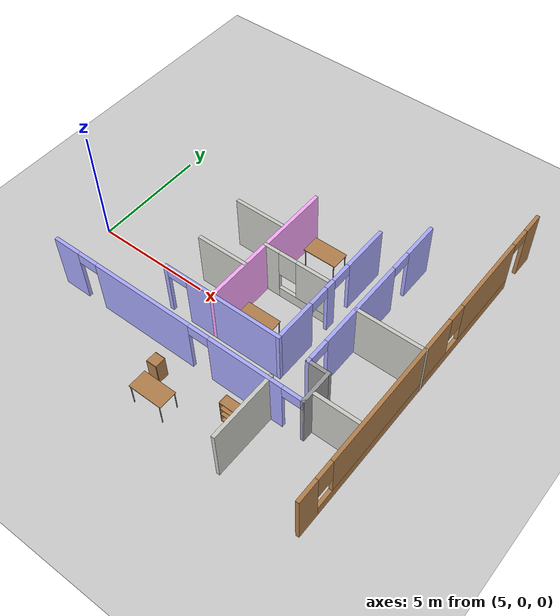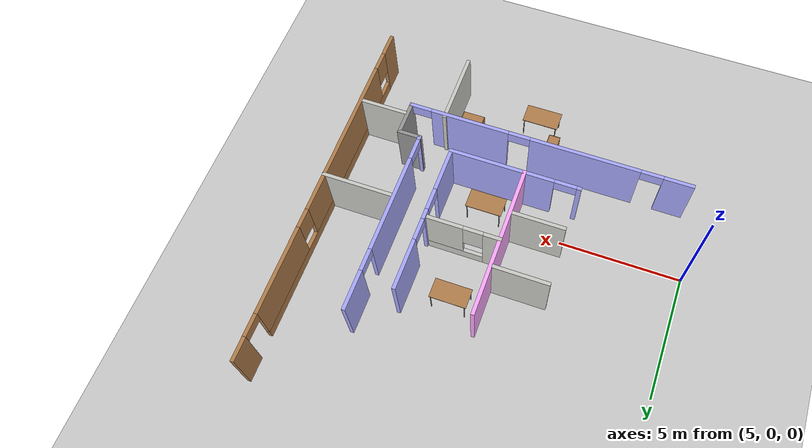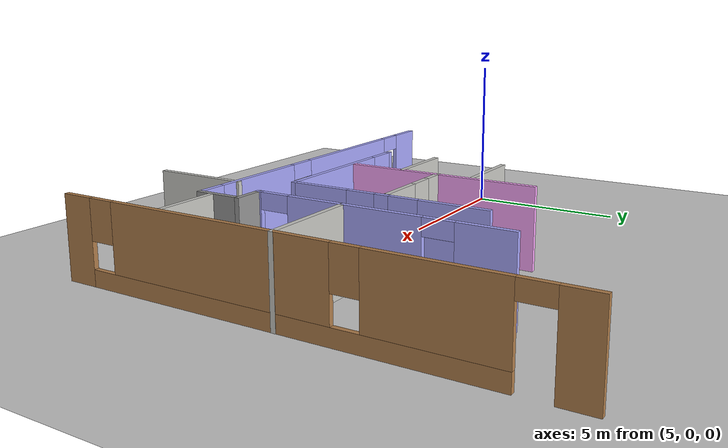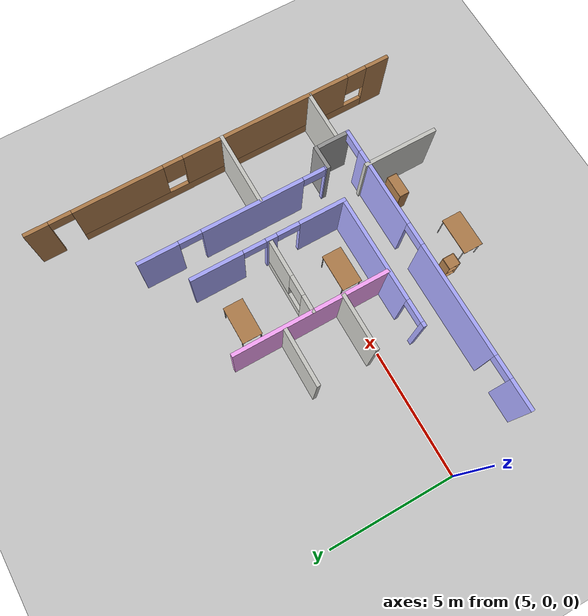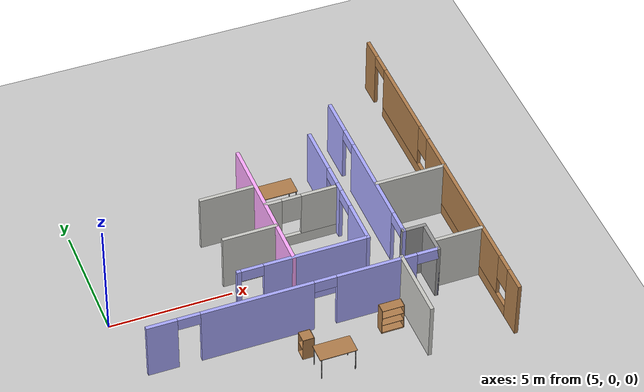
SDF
<sdf version="1.6">
 <world name="default">
  <model name="ground_plane">
   <static>1</static>
   <link name="link">
    <collision name="collision">
     <geometry><plane><normal>0 0 1</normal><size>100 100</size></plane></geometry>
     <surface>
      <contact><collide_bitmask>65535</collide_bitmask></contact>
      <friction><ode><mu>100</mu><mu2>50</mu2></ode></friction>
     </surface>
    </collision>
    <visual name="visual">
     <cast_shadows>0</cast_shadows>
     <geometry><plane><normal>0 0 1</normal><size>100 100</size></plane></geometry>
     <material>
      <script><uri>file://media/materials/scripts/gazebo.material</uri><name>Gazebo/Grey</name></script>
     </material>
    </visual>
   </link>
  </model>
  <model name="newOffice">
   <pose>10.3935 1.72643 0 0 -0 0</pose>
   <link name="Wall_2">
    <pose>8.92902 -0.018654 0 0 -0 1.5708</pose>
    <visual name="Wall_2_Visual_0">
     <pose>-7.00867 0 1.25 0 -0 0</pose>
     <geometry><box><size>0.982667 0.15 2.5</size></box></geometry>
     <material>
      <script><uri>file://media/materials/scripts/gazebo.material</uri><name>Gazebo/Wood</name></script>
      <ambient>1 0.666667 1 1</ambient>
     </material>
     <meta><layer>0</layer></meta>
    </visual>
    <collision name="Wall_2_Collision_0">
     <geometry><box><size>0.982667 0.15 2.5</size></box></geometry>
     <pose>-7.00867 0 1.25 0 -0 0</pose>
    </collision>
    <visual name="Wall_2_Visual_1">
     <pose>7.01908 0 1.25 0 -0 0</pose>
     <geometry><box><size>0.961832 0.15 2.5</size></box></geometry>
     <material>
      <script><uri>file://media/materials/scripts/gazebo.material</uri><name>Gazebo/Wood</name></script>
      <ambient>1 0.666667 1 1</ambient>
     </material>
     <meta><layer>0</layer></meta>
    </visual>
    <collision name="Wall_2_Collision_1">
     <geometry><box><size>0.961832 0.15 2.5</size></box></geometry>
     <pose>7.01908 0 1.25 0 -0 0</pose>
    </collision>
    <visual name="Wall_2_Visual_2">
     <pose>-0.439582 0 0.25 0 -0 0</pose>
     <geometry><box><size>12.1555 0.15 0.5</size></box></geometry>
     <material>
      <script><uri>file://media/materials/scripts/gazebo.material</uri><name>Gazebo/Wood</name></script>
      <ambient>1 0.666667 1 1</ambient>
     </material>
     <meta><layer>0</layer></meta>
    </visual>
    <collision name="Wall_2_Collision_2">
     <geometry><box><size>12.1555 0.15 0.5</size></box></geometry>
     <pose>-0.439582 0 0.25 0 -0 0</pose>
    </collision>
    <visual name="Wall_2_Visual_3">
     <pose>-2.24767 0 1.5 0 -0 0</pose>
     <geometry><box><size>6.93933 0.15 2</size></box></geometry>
     <material>
      <script><uri>file://media/materials/scripts/gazebo.material</uri><name>Gazebo/Wood</name></script>
      <ambient>1 0.666667 1 1</ambient>
     </material>
     <meta><layer>0</layer></meta>
    </visual>
    <collision name="Wall_2_Collision_3">
     <geometry><box><size>6.93933 0.15 2</size></box></geometry>
     <pose>-2.24767 0 1.5 0 -0 0</pose>
    </collision>
    <visual name="Wall_2_Visual_4">
     <pose>3.83008 0 1.5 0 -0 0</pose>
     <geometry><box><size>3.61617 0.15 2</size></box></geometry>
     <material>
      <script><uri>file://media/materials/scripts/gazebo.material</uri><name>Gazebo/Wood</name></script>
      <ambient>1 0.666667 1 1</ambient>
     </material>
     <meta><layer>0</layer></meta>
    </visual>
    <collision name="Wall_2_Collision_4">
     <geometry><box><size>3.61617 0.15 2</size></box></geometry>
     <pose>3.83008 0 1.5 0 -0 0</pose>
    </collision>
    <visual name="Wall_2_Visual_5">
     <pose>-6.11733 0 1.9 0 -0 0</pose>
     <geometry><box><size>0.8 0.15 1.2</size></box></geometry>
     <material>
      <script><uri>file://media/materials/scripts/gazebo.material</uri><name>Gazebo/Wood</name></script>
      <ambient>1 0.666667 1 1</ambient>
     </material>
     <meta><layer>0</layer></meta>
    </visual>
    <collision name="Wall_2_Collision_5">
     <geometry><box><size>0.8 0.15 1.2</size></box></geometry>
     <pose>-6.11733 0 1.9 0 -0 0</pose>
    </collision>
    <visual name="Wall_2_Visual_6">
     <pose>1.622 0 1.9 0 -0 0</pose>
     <geometry><box><size>0.8 0.15 1.2</size></box></geometry>
     <material>
      <script><uri>file://media/materials/scripts/gazebo.material</uri><name>Gazebo/Wood</name></script>
      <ambient>1 0.666667 1 1</ambient>
     </material>
     <meta><layer>0</layer></meta>
    </visual>
    <collision name="Wall_2_Collision_6">
     <geometry><box><size>0.8 0.15 1.2</size></box></geometry>
     <pose>1.622 0 1.9 0 -0 0</pose>
    </collision>
    <visual name="Wall_2_Visual_7">
     <pose>6.08817 0 2.25 0 -0 0</pose>
     <geometry><box><size>0.9 0.15 0.5</size></box></geometry>
     <material>
      <script><uri>file://media/materials/scripts/gazebo.material</uri><name>Gazebo/Wood</name></script>
      <ambient>1 0.666667 1 1</ambient>
     </material>
     <meta><layer>0</layer></meta>
    </visual>
    <collision name="Wall_2_Collision_7">
     <geometry><box><size>0.9 0.15 0.5</size></box></geometry>
     <pose>6.08817 0 2.25 0 -0 0</pose>
    </collision>
   </link>
   <link name="Wall_33">
    <pose>4.64199 0.020406 0 0 0 -1.5708</pose>
    <visual name="Wall_33_Visual_0">
     <pose>-2.07423 0 1.25 0 -0 0</pose>
     <geometry><box><size>2.10154 0.15 2.5</size></box></geometry>
     <material>
      <script><uri>file://media/materials/scripts/gazebo.material</uri><name>Gazebo/Grey</name></script>
      <ambient>0.666667 0.666667 1 1</ambient>
     </material>
     <meta><layer>0</layer></meta>
    </visual>
    <collision name="Wall_33_Collision_0">
     <geometry><box><size>2.10154 0.15 2.5</size></box></geometry>
     <pose>-2.07423 0 1.25 0 -0 0</pose>
    </collision>
    <visual name="Wall_33_Visual_1">
     <pose>0.099527 0 1.25 0 -0 0</pose>
     <geometry><box><size>0.44597 0.15 2.5</size></box></geometry>
     <material>
      <script><uri>file://media/materials/scripts/gazebo.material</uri><name>Gazebo/Grey</name></script>
      <ambient>0.666667 0.666667 1 1</ambient>
     </material>
     <meta><layer>0</layer></meta>
    </visual>
    <collision name="Wall_33_Collision_1">
     <geometry><box><size>0.44597 0.15 2.5</size></box></geometry>
     <pose>0.099527 0 1.25 0 -0 0</pose>
    </collision>
    <visual name="Wall_33_Visual_2">
     <pose>2.17376 0 1.25 0 -0 0</pose>
     <geometry><box><size>1.90249 0.15 2.5</size></box></geometry>
     <material>
      <script><uri>file://media/materials/scripts/gazebo.material</uri><name>Gazebo/Grey</name></script>
      <ambient>0.666667 0.666667 1 1</ambient>
     </material>
     <meta><layer>0</layer></meta>
    </visual>
    <collision name="Wall_33_Collision_2">
     <geometry><box><size>1.90249 0.15 2.5</size></box></geometry>
     <pose>2.17376 0 1.25 0 -0 0</pose>
    </collision>
    <visual name="Wall_33_Visual_3">
     <pose>-0.573458 0 2.25 0 -0 0</pose>
     <geometry><box><size>0.9 0.15 0.5</size></box></geometry>
     <material>
      <script><uri>file://media/materials/scripts/gazebo.material</uri><name>Gazebo/Grey</name></script>
      <ambient>0.666667 0.666667 1 1</ambient>
     </material>
     <meta><layer>0</layer></meta>
    </visual>
    <collision name="Wall_33_Collision_3">
     <geometry><box><size>0.9 0.15 0.5</size></box></geometry>
     <pose>-0.573458 0 2.25 0 -0 0</pose>
    </collision>
    <visual name="Wall_33_Visual_4">
     <pose>0.772512 0 2.25 0 -0 0</pose>
     <geometry><box><size>0.9 0.15 0.5</size></box></geometry>
     <material>
      <script><uri>file://media/materials/scripts/gazebo.material</uri><name>Gazebo/Grey</name></script>
      <ambient>0.666667 0.666667 1 1</ambient>
     </material>
     <meta><layer>0</layer></meta>
    </visual>
    <collision name="Wall_33_Collision_4">
     <geometry><box><size>0.9 0.15 0.5</size></box></geometry>
     <pose>0.772512 0 2.25 0 -0 0</pose>
    </collision>
   </link>
   <link name="Wall_35">
    <pose>2.01699 -3.02959 0 0 -0 3.14159</pose>
    <visual name="Wall_35_Visual_0">
     <pose>-0.543959 0 1.25 0 -0 0</pose>
     <geometry><box><size>4.31208 0.15 2.5</size></box></geometry>
     <material>
      <script><uri>file://media/materials/scripts/gazebo.material</uri><name>Gazebo/Grey</name></script>
      <ambient>0.666667 0.666667 1 1</ambient>
     </material>
     <meta><layer>0</layer></meta>
    </visual>
    <collision name="Wall_35_Collision_0">
     <geometry><box><size>4.31208 0.15 2.5</size></box></geometry>
     <pose>-0.543959 0 1.25 0 -0 0</pose>
    </collision>
    <visual name="Wall_35_Visual_1">
     <pose>2.60604 0 1.25 0 -0 0</pose>
     <geometry><box><size>0.187919 0.15 2.5</size></box></geometry>
     <material>
      <script><uri>file://media/materials/scripts/gazebo.material</uri><name>Gazebo/Grey</name></script>
      <ambient>0.666667 0.666667 1 1</ambient>
     </material>
     <meta><layer>0</layer></meta>
    </visual>
    <collision name="Wall_35_Collision_1">
     <geometry><box><size>0.187919 0.15 2.5</size></box></geometry>
     <pose>2.60604 0 1.25 0 -0 0</pose>
    </collision>
    <visual name="Wall_35_Visual_2">
     <pose>2.06208 0 2.25 0 -0 0</pose>
     <geometry><box><size>0.9 0.15 0.5</size></box></geometry>
     <material>
      <script><uri>file://media/materials/scripts/gazebo.material</uri><name>Gazebo/Grey</name></script>
      <ambient>0.666667 0.666667 1 1</ambient>
     </material>
     <meta><layer>0</layer></meta>
    </visual>
    <collision name="Wall_35_Collision_2">
     <geometry><box><size>0.9 0.15 0.5</size></box></geometry>
     <pose>2.06208 0 2.25 0 -0 0</pose>
    </collision>
   </link>
   <link name="Wall_37">
    <collision name="Wall_37_Collision">
     <geometry><box><size>6.25 0.15 2.5</size></box></geometry>
     <pose>0 0 1.25 0 -0 0</pose>
    </collision>
    <visual name="Wall_37_Visual">
     <pose>0 0 1.25 0 -0 0</pose>
     <geometry><box><size>6.25 0.15 2.5</size></box></geometry>
     <material>
      <script><uri>file://media/materials/scripts/gazebo.material</uri><name>Gazebo/Grey</name></script>
      <ambient>1 0.666667 1 1</ambient>
     </material>
     <meta><layer>0</layer></meta>
    </visual>
    <pose>1.61924 0.020406 0 0 0 -1.5708</pose>
   </link>
   <link name="Wall_39">
    <collision name="Wall_39_Collision">
     <geometry><box><size>2.25 0.15 2.5</size></box></geometry>
     <pose>0 0 1.25 0 -0 0</pose>
    </collision>
    <visual name="Wall_39_Visual">
     <pose>0 0 1.25 0 -0 0</pose>
     <geometry><box><size>2.25 0.15 2.5</size></box></geometry>
     <material>
      <script><uri>file://media/materials/scripts/gazebo.material</uri><name>Gazebo/CeilingTiled</name></script>
      <ambient>1 0.666667 1 1</ambient>
     </material>
     <meta><layer>0</layer></meta>
    </visual>
    <pose>0.436095 1.1164 0 0 -0 0</pose>
   </link>
   <link name="Wall_41">
    <collision name="Wall_41_Collision">
     <geometry><box><size>2.25 0.15 2.5</size></box></geometry>
     <pose>0 0 1.25 0 -0 0</pose>
    </collision>
    <visual name="Wall_41_Visual">
     <pose>0 0 1.25 0 -0 0</pose>
     <geometry><box><size>2.25 0.15 2.5</size></box></geometry>
     <material>
      <script><uri>file://media/materials/scripts/gazebo.material</uri><name>Gazebo/CeilingTiled</name></script>
      <ambient>1 0.666667 1 1</ambient>
     </material>
     <meta><layer>0</layer></meta>
    </visual>
    <pose>0.529143 -1.20979 0 0 -0 0</pose>
   </link>
   <link name="Wall_43">
    <pose>3.04424 -0.000172 0 0 -0 0</pose>
    <visual name="Wall_43_Visual_0">
     <pose>-1.1334 0 1.25 0 -0 0</pose>
     <geometry><box><size>0.733196 0.15 2.5</size></box></geometry>
     <material>
      <script><uri>file://media/materials/scripts/gazebo.material</uri><name>Gazebo/CeilingTiled</name></script>
      <ambient>1 1 1 1</ambient>
     </material>
     <meta><layer>0</layer></meta>
    </visual>
    <collision name="Wall_43_Collision_0">
     <geometry><box><size>0.733196 0.15 2.5</size></box></geometry>
     <pose>-1.1334 0 1.25 0 -0 0</pose>
    </collision>
    <visual name="Wall_43_Visual_1">
     <pose>0.366598 0 0.25 0 -0 0</pose>
     <geometry><box><size>2.2668 0.15 0.5</size></box></geometry>
     <material>
      <script><uri>file://media/materials/scripts/gazebo.material</uri><name>Gazebo/CeilingTiled</name></script>
      <ambient>1 1 1 1</ambient>
     </material>
     <meta><layer>0</layer></meta>
    </visual>
    <collision name="Wall_43_Collision_1">
     <geometry><box><size>2.2668 0.15 0.5</size></box></geometry>
     <pose>0.366598 0 0.25 0 -0 0</pose>
    </collision>
    <visual name="Wall_43_Visual_2">
     <pose>0.766598 0 1.5 0 -0 0</pose>
     <geometry><box><size>1.4668 0.15 2</size></box></geometry>
     <material>
      <script><uri>file://media/materials/scripts/gazebo.material</uri><name>Gazebo/CeilingTiled</name></script>
      <ambient>1 1 1 1</ambient>
     </material>
     <meta><layer>0</layer></meta>
    </visual>
    <collision name="Wall_43_Collision_2">
     <geometry><box><size>1.4668 0.15 2</size></box></geometry>
     <pose>0.766598 0 1.5 0 -0 0</pose>
    </collision>
    <visual name="Wall_43_Visual_3">
     <pose>-0.366804 0 1.9 0 -0 0</pose>
     <geometry><box><size>0.8 0.15 1.2</size></box></geometry>
     <material>
      <script><uri>file://media/materials/scripts/gazebo.material</uri><name>Gazebo/CeilingTiled</name></script>
      <ambient>1 1 1 1</ambient>
     </material>
     <meta><layer>0</layer></meta>
    </visual>
    <collision name="Wall_43_Collision_3">
     <geometry><box><size>0.8 0.15 1.2</size></box></geometry>
     <pose>-0.366804 0 1.9 0 -0 0</pose>
    </collision>
   </link>
   <link name="Wall_47">
    <pose>1.09199 -4.54748 0 0 -0 0</pose>
    <visual name="Wall_47_Visual_0">
     <pose>-5.26055 0 1.25 0 -0 0</pose>
     <geometry><box><size>1.2289 0.15 2.5</size></box></geometry>
     <material>
      <script><uri>file://media/materials/scripts/gazebo.material</uri><name>Gazebo/Grey</name></script>
      <ambient>0.666667 0.666667 1 1</ambient>
     </material>
     <meta><layer>0</layer></meta>
    </visual>
    <collision name="Wall_47_Collision_0">
     <geometry><box><size>1.2289 0.15 2.5</size></box></geometry>
     <pose>-5.26055 0 1.25 0 -0 0</pose>
    </collision>
    <visual name="Wall_47_Visual_1">
     <pose>-1.48887 0 1.25 0 -0 0</pose>
     <geometry><box><size>4.51447 0.15 2.5</size></box></geometry>
     <material>
      <script><uri>file://media/materials/scripts/gazebo.material</uri><name>Gazebo/Grey</name></script>
      <ambient>0.666667 0.666667 1 1</ambient>
     </material>
     <meta><layer>0</layer></meta>
    </visual>
    <collision name="Wall_47_Collision_1">
     <geometry><box><size>4.51447 0.15 2.5</size></box></geometry>
     <pose>-1.48887 0 1.25 0 -0 0</pose>
    </collision>
    <visual name="Wall_47_Visual_2">
     <pose>3.2985 0 1.25 0 -0 0</pose>
     <geometry><box><size>3.26027 0.15 2.5</size></box></geometry>
     <material>
      <script><uri>file://media/materials/scripts/gazebo.material</uri><name>Gazebo/Grey</name></script>
      <ambient>0.666667 0.666667 1 1</ambient>
     </material>
     <meta><layer>0</layer></meta>
    </visual>
    <collision name="Wall_47_Collision_2">
     <geometry><box><size>3.26027 0.15 2.5</size></box></geometry>
     <pose>3.2985 0 1.25 0 -0 0</pose>
    </collision>
    <visual name="Wall_47_Visual_3">
     <pose>5.85182 0 1.25 0 -0 0</pose>
     <geometry><box><size>0.046363 0.15 2.5</size></box></geometry>
     <material>
      <script><uri>file://media/materials/scripts/gazebo.material</uri><name>Gazebo/Grey</name></script>
      <ambient>0.666667 0.666667 1 1</ambient>
     </material>
     <meta><layer>0</layer></meta>
    </visual>
    <collision name="Wall_47_Collision_3">
     <geometry><box><size>0.046363 0.15 2.5</size></box></geometry>
     <pose>5.85182 0 1.25 0 -0 0</pose>
    </collision>
    <visual name="Wall_47_Visual_4">
     <pose>-4.19611 0 2.25 0 -0 0</pose>
     <geometry><box><size>0.9 0.15 0.5</size></box></geometry>
     <material>
      <script><uri>file://media/materials/scripts/gazebo.material</uri><name>Gazebo/Grey</name></script>
      <ambient>0.666667 0.666667 1 1</ambient>
     </material>
     <meta><layer>0</layer></meta>
    </visual>
    <collision name="Wall_47_Collision_4">
     <geometry><box><size>0.9 0.15 0.5</size></box></geometry>
     <pose>-4.19611 0 2.25 0 -0 0</pose>
    </collision>
    <visual name="Wall_47_Visual_5">
     <pose>1.21837 0 2.25 0 -0 0</pose>
     <geometry><box><size>0.9 0.15 0.5</size></box></geometry>
     <material>
      <script><uri>file://media/materials/scripts/gazebo.material</uri><name>Gazebo/Grey</name></script>
      <ambient>0.666667 0.666667 1 1</ambient>
     </material>
     <meta><layer>0</layer></meta>
    </visual>
    <collision name="Wall_47_Collision_5">
     <geometry><box><size>0.9 0.15 0.5</size></box></geometry>
     <pose>1.21837 0 2.25 0 -0 0</pose>
    </collision>
    <visual name="Wall_47_Visual_6">
     <pose>5.37864 0 2.25 0 -0 0</pose>
     <geometry><box><size>0.9 0.15 0.5</size></box></geometry>
     <material>
      <script><uri>file://media/materials/scripts/gazebo.material</uri><name>Gazebo/Grey</name></script>
      <ambient>0.666667 0.666667 1 1</ambient>
     </material>
     <meta><layer>0</layer></meta>
    </visual>
    <collision name="Wall_47_Collision_6">
     <geometry><box><size>0.9 0.15 0.5</size></box></geometry>
     <pose>5.37864 0 2.25 0 -0 0</pose>
    </collision>
   </link>
   <link name="Wall_48">
    <collision name="Wall_48_Collision">
     <geometry><box><size>1.5 0.15 2.5</size></box></geometry>
     <pose>0 0 1.25 0 -0 0</pose>
    </collision>
    <visual name="Wall_48_Visual">
     <pose>0 0 1.25 0 -0 0</pose>
     <geometry><box><size>1.5 0.15 2.5</size></box></geometry>
     <material>
      <script><uri>file://media/materials/scripts/gazebo.material</uri><name>Gazebo/Grey</name></script>
      <ambient>1 1 1 1</ambient>
     </material>
     <meta><layer>0</layer></meta>
    </visual>
    <pose>6.89199 -3.87248 0 0 -0 1.5708</pose>
   </link>
   <link name="Wall_49">
    <collision name="Wall_49_Collision">
     <geometry><box><size>1 0.15 2.5</size></box></geometry>
     <pose>0 0 1.25 0 -0 0</pose>
    </collision>
    <visual name="Wall_49_Visual">
     <pose>0 0 1.25 0 -0 0</pose>
     <geometry><box><size>1 0.15 2.5</size></box></geometry>
     <material>
      <script><uri>file://media/materials/scripts/gazebo.material</uri><name>Gazebo/Grey</name></script>
      <ambient>1 1 1 1</ambient>
     </material>
     <meta><layer>0</layer></meta>
    </visual>
    <pose>6.46699 -3.19747 0 0 -0 3.14159</pose>
   </link>
   <link name="Wall_50">
    <pose>6.04199 0.602525 0 0 -0 1.5708</pose>
    <visual name="Wall_50_Visual_0">
     <pose>-3.77282 0 1.25 0 -0 0</pose>
     <geometry><box><size>0.204365 0.15 2.5</size></box></geometry>
     <material>
      <script><uri>file://media/materials/scripts/gazebo.material</uri><name>Gazebo/Grey</name></script>
      <ambient>0.666667 0.666667 1 1</ambient>
     </material>
     <meta><layer>0</layer></meta>
    </visual>
    <collision name="Wall_50_Collision_0">
     <geometry><box><size>0.204365 0.15 2.5</size></box></geometry>
     <pose>-3.77282 0 1.25 0 -0 0</pose>
    </collision>
    <visual name="Wall_50_Visual_1">
     <pose>-0.712237 0 1.25 0 -0 0</pose>
     <geometry><box><size>4.1168 0.15 2.5</size></box></geometry>
     <material>
      <script><uri>file://media/materials/scripts/gazebo.material</uri><name>Gazebo/Grey</name></script>
      <ambient>0.666667 0.666667 1 1</ambient>
     </material>
     <meta><layer>0</layer></meta>
    </visual>
    <collision name="Wall_50_Collision_1">
     <geometry><box><size>4.1168 0.15 2.5</size></box></geometry>
     <pose>-0.712237 0 1.25 0 -0 0</pose>
    </collision>
    <visual name="Wall_50_Visual_2">
     <pose>3.06058 0 1.25 0 -0 0</pose>
     <geometry><box><size>1.62884 0.15 2.5</size></box></geometry>
     <material>
      <script><uri>file://media/materials/scripts/gazebo.material</uri><name>Gazebo/Grey</name></script>
      <ambient>0.666667 0.666667 1 1</ambient>
     </material>
     <meta><layer>0</layer></meta>
    </visual>
    <collision name="Wall_50_Collision_2">
     <geometry><box><size>1.62884 0.15 2.5</size></box></geometry>
     <pose>3.06058 0 1.25 0 -0 0</pose>
    </collision>
    <visual name="Wall_50_Visual_3">
     <pose>-3.22064 0 2.25 0 -0 0</pose>
     <geometry><box><size>0.9 0.15 0.5</size></box></geometry>
     <material>
      <script><uri>file://media/materials/scripts/gazebo.material</uri><name>Gazebo/Grey</name></script>
      <ambient>0.666667 0.666667 1 1</ambient>
     </material>
     <meta><layer>0</layer></meta>
    </visual>
    <collision name="Wall_50_Collision_3">
     <geometry><box><size>0.9 0.15 0.5</size></box></geometry>
     <pose>-3.22064 0 2.25 0 -0 0</pose>
    </collision>
    <visual name="Wall_50_Visual_4">
     <pose>1.79616 0 2.25 0 -0 0</pose>
     <geometry><box><size>0.9 0.15 0.5</size></box></geometry>
     <material>
      <script><uri>file://media/materials/scripts/gazebo.material</uri><name>Gazebo/Grey</name></script>
      <ambient>0.666667 0.666667 1 1</ambient>
     </material>
     <meta><layer>0</layer></meta>
    </visual>
    <collision name="Wall_50_Collision_4">
     <geometry><box><size>0.9 0.15 0.5</size></box></geometry>
     <pose>1.79616 0 2.25 0 -0 0</pose>
    </collision>
   </link>
   <link name="Wall_52">
    <collision name="Wall_52_Collision">
     <geometry><box><size>3 0.15 2.5</size></box></geometry>
     <pose>0 0 1.25 0 -0 0</pose>
    </collision>
    <visual name="Wall_52_Visual">
     <pose>0 0 1.25 0 -0 0</pose>
     <geometry><box><size>3 0.15 2.5</size></box></geometry>
     <material>
      <script><uri>file://media/materials/scripts/gazebo.material</uri><name>Gazebo/CeilingTiled</name></script>
      <ambient>0.760784 0.662745 0.627451 1</ambient>
     </material>
     <meta><layer>0</layer></meta>
    </visual>
    <pose>7.51054 -0.418888 0 0 -0 0</pose>
   </link>
   <link name="Wall_54">
    <collision name="Wall_54_Collision">
     <geometry><box><size>2 0.15 2.5</size></box></geometry>
     <pose>0 0 1.25 0 -0 0</pose>
    </collision>
    <visual name="Wall_54_Visual">
     <pose>0 0 1.25 0 -0 0</pose>
     <geometry><box><size>2 0.15 2.5</size></box></geometry>
     <material>
      <script><uri>file://media/materials/scripts/gazebo.material</uri><name>Gazebo/CeilingTiled</name></script>
      <ambient>0.760784 0.662745 0.627451 1</ambient>
     </material>
     <meta><layer>0</layer></meta>
    </visual>
    <pose>7.94102 -4.09428 0 0 -0 0</pose>
   </link>
   <link name="Wall_58">
    <collision name="Wall_58_Collision">
     <geometry><box><size>3 0.15 2.5</size></box></geometry>
     <pose>0 0 1.25 0 -0 0</pose>
    </collision>
    <visual name="Wall_58_Visual">
     <pose>0 0 1.25 0 -0 0</pose>
     <geometry><box><size>3 0.15 2.5</size></box></geometry>
     <material>
      <script><uri>file://media/materials/scripts/gazebo.material</uri><name>Gazebo/CeilingTiled</name></script>
      <ambient>0.760784 0.662745 0.627451 1</ambient>
     </material>
     <meta><layer>0</layer></meta>
    </visual>
    <pose>5.4342 -5.89147 0 0 0 -1.5708</pose>
   </link>
   <static>1</static>
  </model>
  <model name="cabinet">
   <static>1</static>
   <link name="cabinet_bottom_plate">
    <inertial>
     <pose>0 0 -1 0 -0 0</pose>
     <inertia><ixx>2.05</ixx><ixy>0</ixy><ixz>0</ixz><iyy>2.05</iyy><iyz>0</iyz><izz>2.05</izz></inertia>
     <mass>25</mass>
    </inertial>
    <collision name="cabinet_bottom_plate_geom">
     <pose>0 0 0.01 0 -0 0</pose>
     <geometry><box><size>0.45 0.45 0.02</size></box></geometry>
    </collision>
    <visual name="cabinet_bottom_plate_geom_visual">
     <pose>0 0 0.01 0 -0 0</pose>
     <geometry><box><size>0.45 0.45 0.02</size></box></geometry>
     <material>
      <script><uri>file://media/materials/scripts/gazebo.material</uri><name>Gazebo/Wood</name></script>
     </material>
    </visual>
    <collision name="cabinet_bottom_plate_geom_cabinet_back_plate">
     <pose>0.235 0 0.51 0 -0 0</pose>
     <geometry><box><size>0.02 0.45 1.02</size></box></geometry>
    </collision>
    <visual name="cabinet_bottom_plate_geom_cabinet_back_plate_visual">
     <pose>0.235 0 0.51 0 -0 0</pose>
     <geometry><box><size>0.02 0.45 1.02</size></box></geometry>
     <material>
      <script><uri>file://media/materials/scripts/gazebo.material</uri><name>Gazebo/Wood</name></script>
     </material>
    </visual>
    <collision name="cabinet_bottom_plate_geom_cabinet_left_plate">
     <pose>0 0.235 0.51 0 -0 0</pose>
     <geometry><box><size>0.45 0.02 1.02</size></box></geometry>
    </collision>
    <visual name="cabinet_bottom_plate_geom_cabinet_left_plate_visual">
     <pose>0 0.235 0.51 0 -0 0</pose>
     <geometry><box><size>0.45 0.02 1.02</size></box></geometry>
     <material>
      <script><uri>file://media/materials/scripts/gazebo.material</uri><name>Gazebo/Wood</name></script>
     </material>
    </visual>
    <collision name="cabinet_bottom_plate_geom_cabinet_middle_plate">
     <pose>0 0 0.51 0 -0 0</pose>
     <geometry><box><size>0.45 0.45 0.02</size></box></geometry>
    </collision>
    <visual name="cabinet_bottom_plate_geom_cabinet_middle_plate_visual">
     <pose>0 0 0.51 0 -0 0</pose>
     <geometry><box><size>0.45 0.45 0.02</size></box></geometry>
     <material>
      <script><uri>file://media/materials/scripts/gazebo.material</uri><name>Gazebo/Wood</name></script>
     </material>
    </visual>
    <collision name="cabinet_bottom_plate_geom_cabinet_right_plate">
     <pose>0 -0.235 0.51 0 -0 0</pose>
     <geometry><box><size>0.45 0.02 1.02</size></box></geometry>
    </collision>
    <visual name="cabinet_bottom_plate_geom_cabinet_right_plate_visual">
     <pose>0 -0.235 0.51 0 -0 0</pose>
     <geometry><box><size>0.45 0.02 1.02</size></box></geometry>
     <material>
      <script><uri>file://media/materials/scripts/gazebo.material</uri><name>Gazebo/Wood</name></script>
     </material>
    </visual>
    <collision name="cabinet_bottom_plate_geom_cabinet_top_plate">
     <pose>0 0 1.01 0 -0 0</pose>
     <geometry><box><size>0.45 0.45 0.02</size></box></geometry>
    </collision>
    <visual name="cabinet_bottom_plate_geom_cabinet_top_plate_visual">
     <pose>0 0 1.01 0 -0 0</pose>
     <geometry><box><size>0.45 0.45 0.02</size></box></geometry>
     <material>
      <script><uri>file://media/materials/scripts/gazebo.material</uri><name>Gazebo/Wood</name></script>
     </material>
    </visual>
   </link>
   <pose>11.504 -3.95494 0 0 -0 0</pose>
  </model>
  <model name="table">
   <static>1</static>
   <link name="link">
    <collision name="surface">
     <pose>0 0 1 0 -0 0</pose>
     <geometry><box><size>1.5 0.8 0.03</size></box></geometry>
     <surface><friction><ode><mu>0.6</mu><mu2>0.6</mu2></ode></friction></surface>
    </collision>
    <visual name="visual1">
     <pose>0 0 1 0 -0 0</pose>
     <geometry><box><size>1.5 0.8 0.03</size></box></geometry>
     <material>
      <script><uri>file://media/materials/scripts/gazebo.material</uri><name>Gazebo/Wood</name></script>
     </material>
    </visual>
    <collision name="front_left_leg">
     <pose>0.68 0.38 0.5 0 -0 0</pose>
     <geometry><cylinder><radius>0.02</radius><length>1</length></cylinder></geometry>
    </collision>
    <visual name="front_left_leg">
     <pose>0.68 0.38 0.5 0 -0 0</pose>
     <geometry><cylinder><radius>0.02</radius><length>1</length></cylinder></geometry>
     <material>
      <script><uri>file://media/materials/scripts/gazebo.material</uri><name>Gazebo/Grey</name></script>
     </material>
    </visual>
    <collision name="front_right_leg">
     <pose>0.68 -0.38 0.5 0 -0 0</pose>
     <geometry><cylinder><radius>0.02</radius><length>1</length></cylinder></geometry>
    </collision>
    <visual name="front_right_leg">
     <pose>0.68 -0.38 0.5 0 -0 0</pose>
     <geometry><cylinder><radius>0.02</radius><length>1</length></cylinder></geometry>
     <material>
      <script><uri>file://media/materials/scripts/gazebo.material</uri><name>Gazebo/Grey</name></script>
     </material>
    </visual>
    <collision name="back_right_leg">
     <pose>-0.68 -0.38 0.5 0 -0 0</pose>
     <geometry><cylinder><radius>0.02</radius><length>1</length></cylinder></geometry>
    </collision>
    <visual name="back_right_leg">
     <pose>-0.68 -0.38 0.5 0 -0 0</pose>
     <geometry><cylinder><radius>0.02</radius><length>1</length></cylinder></geometry>
     <material>
      <script><uri>file://media/materials/scripts/gazebo.material</uri><name>Gazebo/Grey</name></script>
     </material>
    </visual>
    <collision name="back_left_leg">
     <pose>-0.68 0.38 0.5 0 -0 0</pose>
     <geometry><cylinder><radius>0.02</radius><length>1</length></cylinder></geometry>
    </collision>
    <visual name="back_left_leg">
     <pose>-0.68 0.38 0.5 0 -0 0</pose>
     <geometry><cylinder><radius>0.02</radius><length>1</length></cylinder></geometry>
     <material>
      <script><uri>file://media/materials/scripts/gazebo.material</uri><name>Gazebo/Grey</name></script>
     </material>
    </visual>
   </link>
   <pose>12.2741 -4.93907 0 0 -0 0</pose>
  </model>
  <model name="bookshelf">
   <static>1</static>
   <link name="link">
    <inertial><mass>1</mass></inertial>
    <collision name="back">
     <pose>0 0.005 0.6 0 -0 0</pose>
     <geometry><box><size>0.9 0.01 1.2</size></box></geometry>
    </collision>
    <visual name="visual1">
     <pose>0 0.005 0.6 0 -0 0</pose>
     <geometry><box><size>0.9 0.01 1.2</size></box></geometry>
     <material>
      <script><uri>file://media/materials/scripts/gazebo.material</uri><name>Gazebo/Wood</name></script>
     </material>
    </visual>
    <collision name="left_side">
     <pose>0.45 -0.195 0.6 0 -0 0</pose>
     <geometry><box><size>0.02 0.4 1.2</size></box></geometry>
    </collision>
    <visual name="visual2">
     <pose>0.45 -0.195 0.6 0 -0 0</pose>
     <geometry><box><size>0.02 0.4 1.2</size></box></geometry>
     <material>
      <script><uri>file://media/materials/scripts/gazebo.material</uri><name>Gazebo/Wood</name></script>
     </material>
    </visual>
    <collision name="right_side">
     <pose>-0.45 -0.195 0.6 0 -0 0</pose>
     <geometry><box><size>0.02 0.4 1.2</size></box></geometry>
    </collision>
    <visual name="visual3">
     <pose>-0.45 -0.195 0.6 0 -0 0</pose>
     <geometry><box><size>0.02 0.4 1.2</size></box></geometry>
     <material>
      <script><uri>file://media/materials/scripts/gazebo.material</uri><name>Gazebo/Wood</name></script>
     </material>
    </visual>
    <collision name="bottom">
     <pose>0 -0.195 0.03 0 -0 0</pose>
     <geometry><box><size>0.88 0.4 0.06</size></box></geometry>
    </collision>
    <visual name="visual4">
     <pose>0 -0.195 0.03 0 -0 0</pose>
     <geometry><box><size>0.88 0.4 0.06</size></box></geometry>
     <material>
      <script><uri>file://media/materials/scripts/gazebo.material</uri><name>Gazebo/Wood</name></script>
     </material>
    </visual>
    <collision name="top">
     <pose>0 -0.195 1.19 0 -0 0</pose>
     <geometry><box><size>0.88 0.4 0.02</size></box></geometry>
    </collision>
    <visual name="visual5">
     <pose>0 -0.195 1.19 0 -0 0</pose>
     <geometry><box><size>0.88 0.4 0.02</size></box></geometry>
     <material>
      <script><uri>file://media/materials/scripts/gazebo.material</uri><name>Gazebo/Wood</name></script>
     </material>
    </visual>
    <collision name="low_shelf">
     <pose>0 -0.195 0.43 0 -0 0</pose>
     <geometry><box><size>0.88 0.4 0.02</size></box></geometry>
    </collision>
    <visual name="visual6">
     <pose>0 -0.195 0.43 0 -0 0</pose>
     <geometry><box><size>0.88 0.4 0.02</size></box></geometry>
     <material>
      <script><uri>file://media/materials/scripts/gazebo.material</uri><name>Gazebo/Wood</name></script>
     </material>
    </visual>
    <collision name="high_shelf">
     <pose>0 -0.195 0.8 0 -0 0</pose>
     <geometry><box><size>0.88 0.4 0.02</size></box></geometry>
    </collision>
    <visual name="visual7">
     <pose>0 -0.195 0.8 0 -0 0</pose>
     <geometry><box><size>0.88 0.4 0.02</size></box></geometry>
     <material>
      <script><uri>file://media/materials/scripts/gazebo.material</uri><name>Gazebo/Wood</name></script>
     </material>
    </visual>
   </link>
   <pose>15.0061 -3.61793 0 0 -0 0</pose>
  </model>
  <model name="table_clone_1">
   <static>1</static>
   <link name="link">
    <collision name="surface">
     <pose>0 0 1 0 -0 0</pose>
     <geometry><box><size>1.5 0.8 0.03</size></box></geometry>
     <surface><friction><ode><mu>0.6</mu><mu2>0.6</mu2></ode></friction></surface>
    </collision>
    <visual name="visual1">
     <pose>0 0 1 0 -0 0</pose>
     <geometry><box><size>1.5 0.8 0.03</size></box></geometry>
     <material>
      <script><uri>file://media/materials/scripts/gazebo.material</uri><name>Gazebo/Wood</name></script>
     </material>
    </visual>
    <collision name="front_left_leg">
     <pose>0.68 0.38 0.5 0 -0 0</pose>
     <geometry><cylinder><radius>0.02</radius><length>1</length></cylinder></geometry>
    </collision>
    <visual name="front_left_leg">
     <pose>0.68 0.38 0.5 0 -0 0</pose>
     <geometry><cylinder><radius>0.02</radius><length>1</length></cylinder></geometry>
     <material>
      <script><uri>file://media/materials/scripts/gazebo.material</uri><name>Gazebo/Grey</name></script>
     </material>
    </visual>
    <collision name="front_right_leg">
     <pose>0.68 -0.38 0.5 0 -0 0</pose>
     <geometry><cylinder><radius>0.02</radius><length>1</length></cylinder></geometry>
    </collision>
    <visual name="front_right_leg">
     <pose>0.68 -0.38 0.5 0 -0 0</pose>
     <geometry><cylinder><radius>0.02</radius><length>1</length></cylinder></geometry>
     <material>
      <script><uri>file://media/materials/scripts/gazebo.material</uri><name>Gazebo/Grey</name></script>
     </material>
    </visual>
    <collision name="back_right_leg">
     <pose>-0.68 -0.38 0.5 0 -0 0</pose>
     <geometry><cylinder><radius>0.02</radius><length>1</length></cylinder></geometry>
    </collision>
    <visual name="back_right_leg">
     <pose>-0.68 -0.38 0.5 0 -0 0</pose>
     <geometry><cylinder><radius>0.02</radius><length>1</length></cylinder></geometry>
     <material>
      <script><uri>file://media/materials/scripts/gazebo.material</uri><name>Gazebo/Grey</name></script>
     </material>
    </visual>
    <collision name="back_left_leg">
     <pose>-0.68 0.38 0.5 0 -0 0</pose>
     <geometry><cylinder><radius>0.02</radius><length>1</length></cylinder></geometry>
    </collision>
    <visual name="back_left_leg">
     <pose>-0.68 0.38 0.5 0 -0 0</pose>
     <geometry><cylinder><radius>0.02</radius><length>1</length></cylinder></geometry>
     <material>
      <script><uri>file://media/materials/scripts/gazebo.material</uri><name>Gazebo/Grey</name></script>
     </material>
    </visual>
   </link>
   <pose>13.2274 -0.297483 0 0 -0 0</pose>
  </model>
  <model name="table_clone_2">
   <static>1</static>
   <link name="link">
    <collision name="surface">
     <pose>0 0 1 0 -0 0</pose>
     <geometry><box><size>1.5 0.8 0.03</size></box></geometry>
     <surface><friction><ode><mu>0.6</mu><mu2>0.6</mu2></ode></friction></surface>
    </collision>
    <visual name="visual1">
     <pose>0 0 1 0 -0 0</pose>
     <geometry><box><size>1.5 0.8 0.03</size></box></geometry>
     <material>
      <script><uri>file://media/materials/scripts/gazebo.material</uri><name>Gazebo/Wood</name></script>
     </material>
    </visual>
    <collision name="front_left_leg">
     <pose>0.68 0.38 0.5 0 -0 0</pose>
     <geometry><cylinder><radius>0.02</radius><length>1</length></cylinder></geometry>
    </collision>
    <visual name="front_left_leg">
     <pose>0.68 0.38 0.5 0 -0 0</pose>
     <geometry><cylinder><radius>0.02</radius><length>1</length></cylinder></geometry>
     <material>
      <script><uri>file://media/materials/scripts/gazebo.material</uri><name>Gazebo/Grey</name></script>
     </material>
    </visual>
    <collision name="front_right_leg">
     <pose>0.68 -0.38 0.5 0 -0 0</pose>
     <geometry><cylinder><radius>0.02</radius><length>1</length></cylinder></geometry>
    </collision>
    <visual name="front_right_leg">
     <pose>0.68 -0.38 0.5 0 -0 0</pose>
     <geometry><cylinder><radius>0.02</radius><length>1</length></cylinder></geometry>
     <material>
      <script><uri>file://media/materials/scripts/gazebo.material</uri><name>Gazebo/Grey</name></script>
     </material>
    </visual>
    <collision name="back_right_leg">
     <pose>-0.68 -0.38 0.5 0 -0 0</pose>
     <geometry><cylinder><radius>0.02</radius><length>1</length></cylinder></geometry>
    </collision>
    <visual name="back_right_leg">
     <pose>-0.68 -0.38 0.5 0 -0 0</pose>
     <geometry><cylinder><radius>0.02</radius><length>1</length></cylinder></geometry>
     <material>
      <script><uri>file://media/materials/scripts/gazebo.material</uri><name>Gazebo/Grey</name></script>
     </material>
    </visual>
    <collision name="back_left_leg">
     <pose>-0.68 0.38 0.5 0 -0 0</pose>
     <geometry><cylinder><radius>0.02</radius><length>1</length></cylinder></geometry>
    </collision>
    <visual name="back_left_leg">
     <pose>-0.68 0.38 0.5 0 -0 0</pose>
     <geometry><cylinder><radius>0.02</radius><length>1</length></cylinder></geometry>
     <material>
      <script><uri>file://media/materials/scripts/gazebo.material</uri><name>Gazebo/Grey</name></script>
     </material>
    </visual>
   </link>
   <pose>13.2545 3.81826 0 0 -0 0</pose>
  </model>
 </world>
</sdf>
